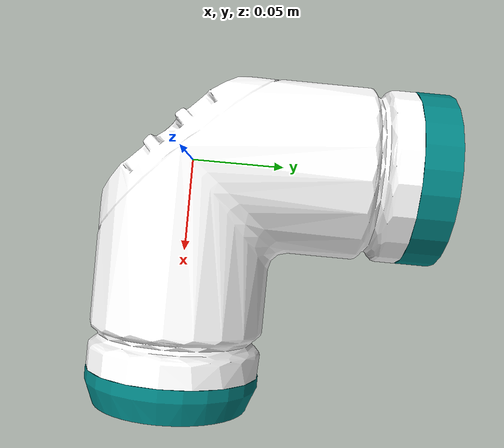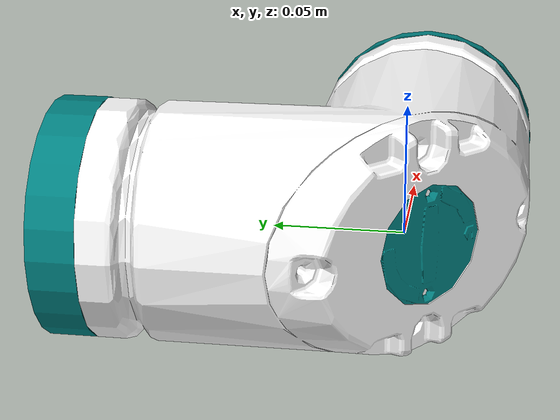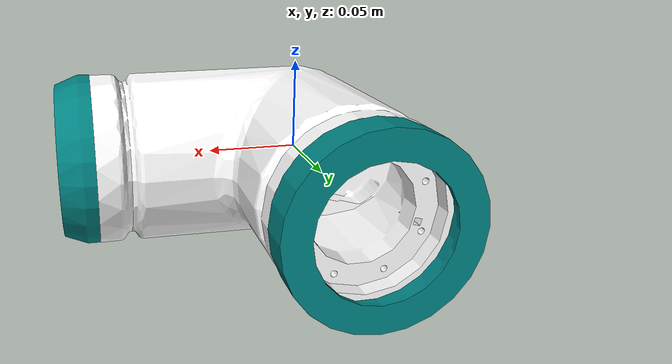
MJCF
<mujoco model="l3">
  <default>
    <default class="visual">
      <geom group="2" type="mesh" contype="0" conaffinity="0"/>
    </default>
    <default class="collision">
      <geom group="3" type="mesh"/>
    </default>
  </default>
  <asset>
    <material name="MTL0" specular="0.0" shininess="0.25" rgba="1.000000 1.000000 1.000000 1.000000"/>
    <material name="MTL0.011" specular="0.0" shininess="0.25" rgba="0.000000 0.502000 0.502000 1.000000"/>
    <material name="MTL0.012" specular="0.0" shininess="0.25" rgba="0.000000 0.502000 0.502000 1.000000"/>
    <material name="MTL1" specular="0.0" shininess="0.25" rgba="0.000000 0.502000 0.502000 1.000000"/>
    <mesh file="l3_0.obj"/>
    <mesh file="l3_1.obj"/>
    <mesh file="l3_2.obj"/>
    <mesh file="l3_3.obj"/>
  </asset>
  <worldbody>
    <body name="l3">
      <geom mesh="l3_0" material="MTL1" class="visual"/>
      <geom mesh="l3_1" material="MTL0" class="visual"/>
      <geom mesh="l3_2" material="MTL0.012" class="visual"/>
      <geom mesh="l3_3" material="MTL0.011" class="visual"/>
      <geom mesh="l3_0" class="collision"/>
      <geom mesh="l3_1" class="collision"/>
      <geom mesh="l3_2" class="collision"/>
      <geom mesh="l3_3" class="collision"/>
    </body>
  </worldbody>
</mujoco>
